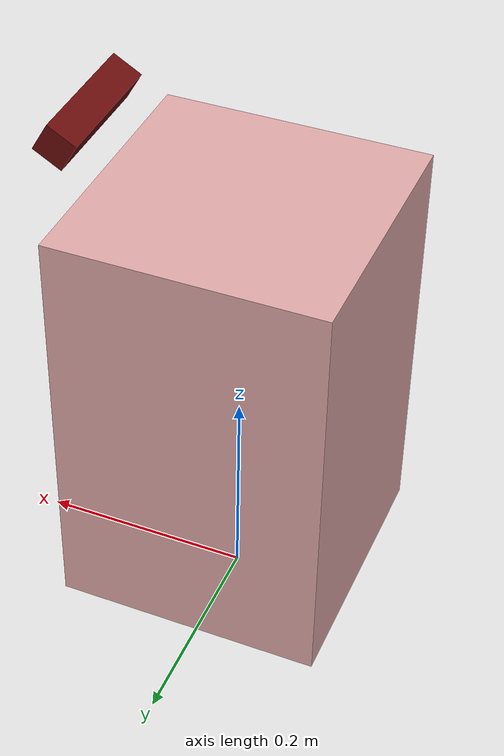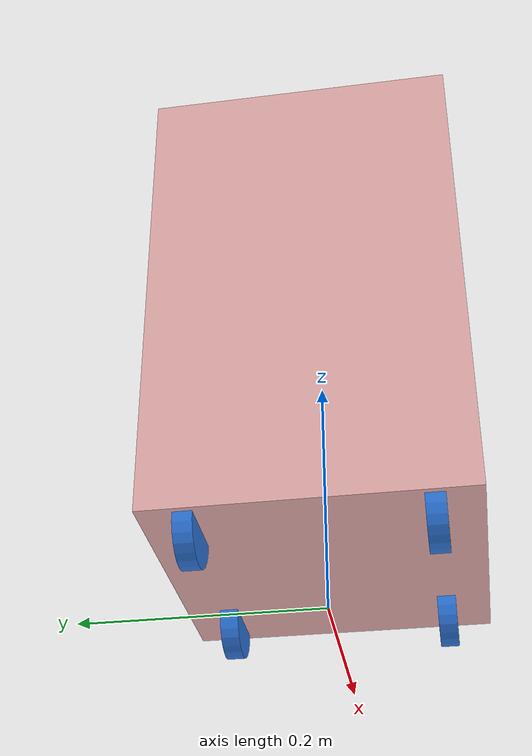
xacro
<?xml version="1.0"?>
<robot name="3gp6_bot" xmlns:xacro="http://ros.org/wiki/xacro">
    <xacro:include filename="$(find robot_description)/urdf/properties.urdf.xacro" />
    <xacro:include filename="$(find robot_description)/urdf/base.urdf.xacro" />
    <xacro:include filename="$(find robot_description)/urdf/wheel.urdf.xacro" />
    <xacro:include filename="$(find robot_description)/urdf/drive.urdf.xacro" />
    <xacro:include filename="$(find robot_description)/urdf/sensors/imu.urdf.xacro" />
    <xacro:include filename="$(find robot_description)/urdf/sensors/depth_sensor.urdf.xacro" />

    <xacro:base
        length="${base_length}"
        width="${base_width}"
        height="${base_height}"
        mass="${base_mass}"
        wheel_radius="${wheel_radius}"
        wheel_pos_z="${wheel_pos_z}"
    />

    <xacro:wheel
        side="front_left"
        radius="${wheel_radius}"
        width="${wheel_width}"
        pos_x="${wheel_pos_x}"
        pos_y="${wheel_pos_y}"
        pos_z="${wheel_pos_z}"
        mass="${wheel_mass}"
    />

    <xacro:wheel
        side="front_right"
        radius="${wheel_radius}"
        width="${wheel_width}"
        pos_x="${wheel_pos_x}"
        pos_y="${-wheel_pos_y}"
        pos_z="${wheel_pos_z}"
        mass="${wheel_mass}"
    />
    <xacro:wheel
        side="rear_left"
        radius="${wheel_radius}"
        width="${wheel_width}"
        pos_x="${-wheel_pos_x}"
        pos_y="${wheel_pos_y}"
        pos_z="${wheel_pos_z}"
        mass="${wheel_mass}"
    />

    <xacro:wheel
        side="rear_right"
        radius="${wheel_radius}"
        width="${wheel_width}"
        pos_x="${-wheel_pos_x}"
        pos_y="${-wheel_pos_y}"
        pos_z="${wheel_pos_z}"
        mass="${wheel_mass}"
    />

    <xacro:imu/>

    <xacro:depth_sensor>
        <xacro:insert_block name="depth_sensor_pose" />
    </xacro:depth_sensor>

    <xacro:drive_controller/>
</robot>

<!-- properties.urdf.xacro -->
<robot xmlns:xacro="http://ros.org/wiki/xacro">
    <xacro:property name="base_length" value="0.25" />
    <xacro:property name="base_width" value="0.25" />
    <xacro:property name="base_height" value="0.4" />
    <xacro:property name="base_mass" value="30" />

    <xacro:property name="wheel_radius" value="0.03" />
    <xacro:property name="wheel_width" value="0.015" />
    <xacro:property name="wheel_pos_x" value="0.09" />
    <xacro:property name="wheel_pos_y" value="0.09" />
    <xacro:property name="wheel_pos_z" value="-0.2" />
    <xacro:property name="wheel_mass" value="0.01" />
    <xacro:property name="wheel_torque" value="16" />

    <xacro:property name="depth_sensor_pose">
        <origin xyz="0.14 0 0.25" rpy="0 ${pi/3} 0"/>
    </xacro:property>
</robot>

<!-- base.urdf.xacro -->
<robot xmlns:xacro="http://ros.org/wiki/xacro">
    <xacro:macro name="base" params="length width height mass wheel_radius wheel_pos_z">
        <link name="base_footprint"/>

        <link name="base_link">
            <visual>
                <origin xyz="0 0 0" rpy="0 0 0"/>
                <geometry>
                    <box size="${length} ${width} ${height}"/>
                </geometry>
                <material name="yellow">
                    <color rgba="0.8784 0.6627 0.6627 1.0"/>
                </material>
            </visual>

            <collision>
                <origin xyz="0 0 0" rpy="0 0 0"/>
                <geometry>
                    <box size="${length} ${width} ${height}"/>
                </geometry>
            </collision>

            <inertial>
                <origin xyz="0 0 0" rpy="0 0 0"/>
                <mass value="${mass}"/>
                <inertia ixx="${(1/12) * mass * ((width  * width)  + (height * height))}" ixy="0.0" ixz="0.0"
                        iyy="${(1/12) * mass * ((length * length) + (height * height))}" iyz="0.0"
                        izz="${(1/12) * mass * ((length * length) + (width  * width))}"/>
            </inertial>
        </link>

        <gazebo reference="base_link">
            <visual>
                <material>
                <ambient>0.8392 0.6314 0.0 1.0</ambient>
                <diffuse>0.8392 0.6314 0.0 1.0</diffuse>
                <specular>0.99 0.99 0.99 1.0</specular>
                <emissive>0.0 0.0 0.0 0.0</emissive>
                </material>
            </visual>
        </gazebo>

        <joint name="base_to_footprint" type="fixed">
            <parent link="base_footprint"/>
            <child link="base_link"/>
            <origin xyz="0 0 ${wheel_radius - wheel_pos_z}" rpy="0 0 0"/>
        </joint>
    </xacro:macro>
</robot>

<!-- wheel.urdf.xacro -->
<robot xmlns:xacro="http://ros.org/wiki/xacro">
    <xacro:macro name="wheel" params="side radius width pos_x pos_y pos_z mass">
        <link name="${side}_wheel_link">
        <visual>
            <origin xyz="0 0 0" rpy="${pi/2} 0 0"/>
            <geometry>
            <cylinder radius="${radius}" length="${width}"/>
            </geometry>
            <material name="blue">
                <color rgba="0.1764 0.4588 0.8509 1.0"/>
            </material>
        </visual>
        <collision>
            <origin xyz="0 0 0" rpy="${pi/2} 0 0"/>
            <geometry>
            <cylinder radius="${radius}" length="${width}"/>
            </geometry>
        </collision>

        <inertial>
            <origin xyz="0 0 0" rpy="0 0 0"/>
            <mass value="${mass}"/>
            <inertia ixx="${(2/5) * mass * (radius * radius)}" ixy="0" ixz="0"
                    iyy="${(2/5) * mass * (radius * radius)}" iyz="0"
                    izz="${(2/5) * mass * (radius * radius)}" />
        </inertial>
        </link>

        <gazebo reference="${side}_wheel_link">
            <mu1>0.01</mu1>
            <mu2>0.01</mu2>
        </gazebo>

        <gazebo reference="${side}_wheel_link">
        <visual>
            <material>
            <ambient>0.1764 0.4588 0.8509 1.0</ambient>
            <diffuse>0.1764 0.4588 0.8509 1.0</diffuse>
            <specular>0.1764 0.4588 0.8509 1.0</specular>
            <emissive>0.0 0.0 0.0 0.0</emissive>
            </material>
        </visual>
        </gazebo>
        <joint name="${side}_wheel_joint" type="continuous">
        <axis xyz="0 1 0" />
        <parent link="base_link"/>
        <child link="${side}_wheel_link"/>
        <origin xyz="${pos_x} ${pos_y} ${pos_z}" rpy="0 0 0"/>
        </joint>
    </xacro:macro>
</robot>

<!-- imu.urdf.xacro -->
<robot xmlns:xacro="http://ros.org/wiki/xacro">
    <xacro:include filename="$(find robot_description)/urdf/sensors/imu.gazebo.xacro" />
    <xacro:macro name="imu">
        <link name="imu_link" />

        <joint name="imu_to_base_link" type="fixed">
            <parent link="base_link" />
            <child link="imu_link" />
            <origin xyz="0 0 0" rpy="0 0 0" />
        </joint>

        <xacro:imu_gazebo />
    </xacro:macro>
</robot>

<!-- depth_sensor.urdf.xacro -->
<robot xmlns:xacro="http://ros.org/wiki/xacro">
    <xacro:property name="M_PI" value="3.1415926535897931" />
    <xacro:macro name="depth_sensor" params="*origin">
        <link name="camera_link">
            <visual>
                <origin xyz="0 0 0" rpy="0 0 0" />
                <geometry>
                    <box size="0.030 0.124 0.030" />
                </geometry>
                <material name="red">
                    <color rgba="0.416 0.051 0.047 1.0" />
                </material>
            </visual>

            <collision>
                <origin xyz="0 0 0" rpy="0 0 0" />
                <geometry>
                    <box size="0.030 0.124 0.030" />
                </geometry>
            </collision>

            <inertial>
                <origin xyz="0 0 0" rpy="0 0 0" />
                <mass value="0.135" />
                <inertia ixx="${(1/12) * 0.135 * ((0.124  * 0.124)  + (0.030 * 0.030))}" ixy="0.0"
                    ixz="0.0"
                    iyy="${(1/12) * 0.135 * ((0.030 * 0.030) + (0.030 * 0.030))}" iyz="0.0"
                    izz="${(1/12) * 0.135 * ((0.030 * 0.030) + (0.124  * 0.124))}" />
            </inertial>
        </link>

      <gazebo
            reference="camera_link">
            <visual>
                <material>
                    <ambient>0.416 0.051 0.047 1.0</ambient>
                    <diffuse>0.416 0.051 0.047 1.0</diffuse>
                    <specular>0.416 0.051 0.047 1.0</specular>
                    <emissive>0.416 0.051 0.047 1.0</emissive>
                </material>
            </visual>
        </gazebo>
        rgb(213,28,40)

      <joint name="camera_to_base_link" type="fixed">
            <parent link="base_link" />
            <child link="camera_link" />
            <xacro:insert_block name="origin" />
        </joint>

      <link name="camera_depth_link" />
      <joint
            name="camera_depth_joint" type="fixed">
            <origin xyz="0 0 0" rpy="-1.57 0 -1.57" />
            <parent link="camera_link" />
            <child link="camera_depth_link" />
        </joint>

        <!--
        https://github.com/ros-simulation/gazebo_ros_pkgs/wiki/ROS-2-Migration:-Camera#gazebo_ros_camera -->
      <gazebo reference="camera_link">
            <sensor name="camera" type="depth">
                <always_on>true</always_on>
                <update_rate>30.0</update_rate>
                <camera name="camera">
                    <horizontal_fov>1.50098</horizontal_fov>
                    <image>
                        <width>640</width>
                        <height>480</height>
                        <format>R8G8B8</format>
                    </image>
                </camera>
                <plugin name="camera_controller" filename="libgazebo_ros_camera.so">
                    <ros>
                        <remapping>/camera/camera_info:=/camera/color/camera_info</remapping>
                        <remapping>/camera/image_raw:=/camera/color/image_raw</remapping>
                        <remapping>/camera/points:=/camera/depth/color/points</remapping>
                        <remapping>/camera/depth/image_raw:=/camera/depth/image_rect_raw</remapping>
                        <qos>
                            <topic name="/camera/depth/color/points">
                                <publisher>
                                    <reliability>best_effort</reliability>
                                </publisher>
                            </topic>
                        </qos>
                    </ros>
                    <min_depth>0.015</min_depth>
                    <max_depth>3.0</max_depth>
                    <hack_baseline>0.07</hack_baseline>
                    <frame_name>camera_depth_link</frame_name>
                    <distortion_k1>0.00000001</distortion_k1>
                    <distortion_k2>0.00000001</distortion_k2>
                    <distortion_k3>0.00000001</distortion_k3>
                    <distortion_t1>0.00000001</distortion_t1>
                    <distortion_t2>0.00000001</distortion_t2>
                </plugin>
            </sensor>

        </gazebo>
    </xacro:macro>
</robot>
